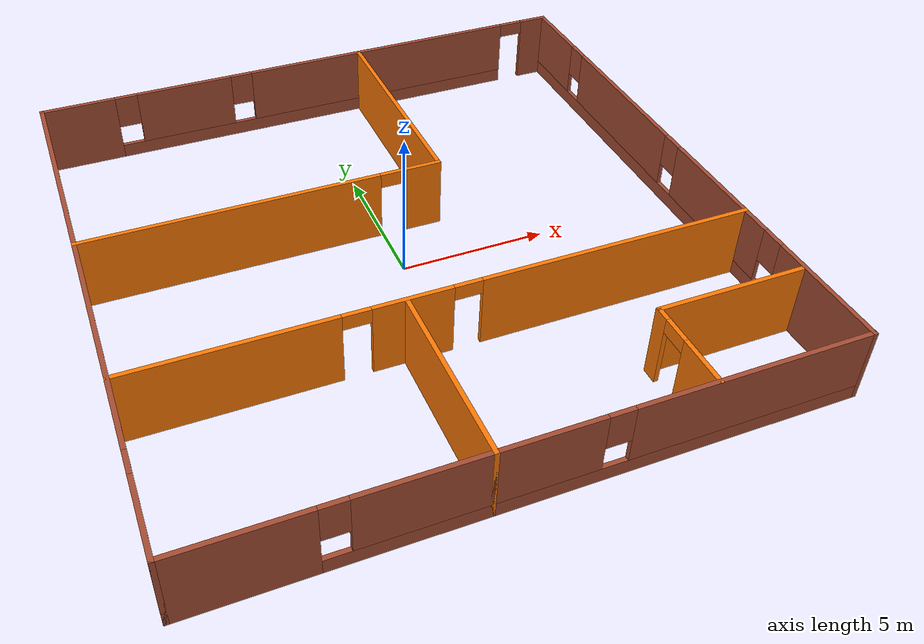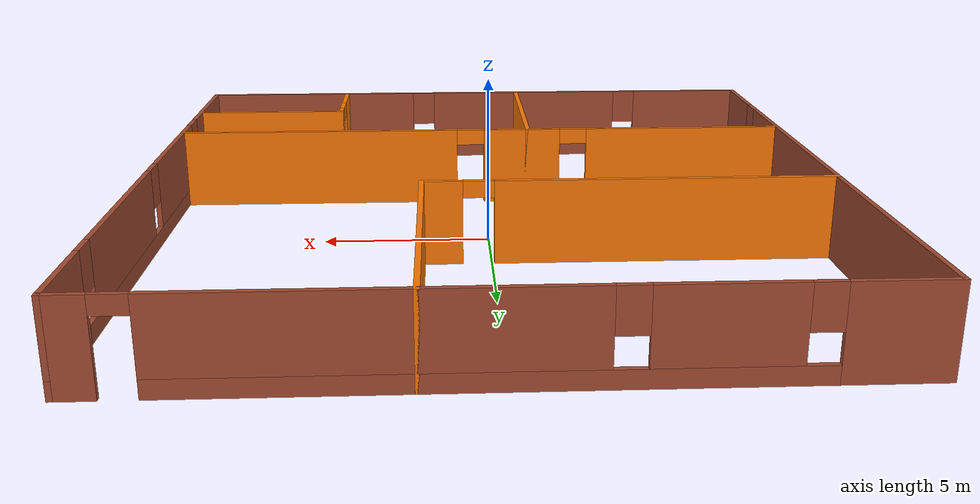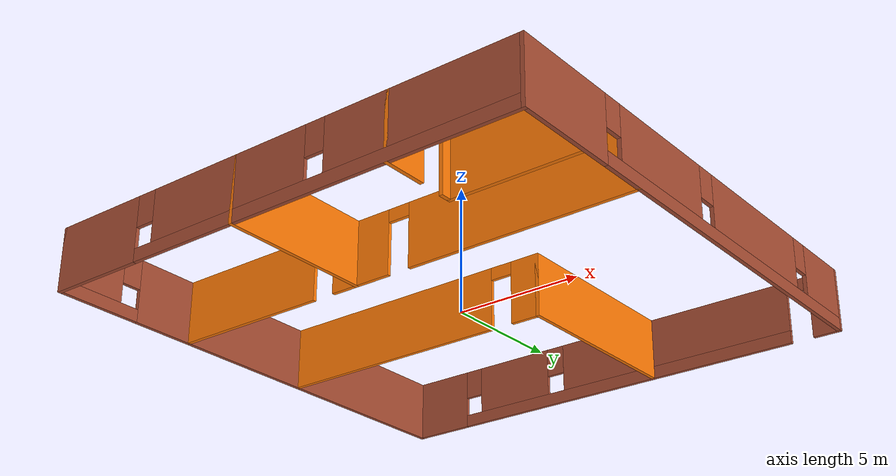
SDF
<?xml version='1.0'?>
<sdf version='1.6'>
  <model name='Building'>
    <pose frame=''>0 0 0 0 -0 0</pose>
    <link name='Wall_0'>
      <pose frame=''>0 10 0 0 -0 0</pose>
      <visual name='Wall_0_Visual_0'>
        <pose frame=''>-8.74573 0 1.25 0 -0 0</pose>
        <geometry>
          <box>
            <size>2.65853 0.15 2.5</size>
          </box>
        </geometry>
        <material>
          <script>
            <uri>file://media/materials/scripts/gazebo.material</uri>
            <name>Gazebo/Bricks</name>
          </script>
          <ambient>1 1 1 1</ambient>
        </material>
        <meta>
          <layer>0</layer>
        </meta>
      </visual>
      <collision name='Wall_0_Collision_0'>
        <geometry>
          <box>
            <size>2.65853 0.15 2.5</size>
          </box>
        </geometry>
        <pose frame=''>-8.74573 0 1.25 0 -0 0</pose>
      </collision>
      <visual name='Wall_0_Visual_1'>
        <pose frame=''>9.52682 0 1.25 0 -0 0</pose>
        <geometry>
          <box>
            <size>1.09635 0.15 2.5</size>
          </box>
        </geometry>
        <material>
          <script>
            <uri>file://media/materials/scripts/gazebo.material</uri>
            <name>Gazebo/Bricks</name>
          </script>
          <ambient>1 1 1 1</ambient>
        </material>
        <meta>
          <layer>0</layer>
        </meta>
      </visual>
      <collision name='Wall_0_Collision_1'>
        <geometry>
          <box>
            <size>1.09635 0.15 2.5</size>
          </box>
        </geometry>
        <pose frame=''>9.52682 0 1.25 0 -0 0</pose>
      </collision>
      <visual name='Wall_0_Visual_2'>
        <pose frame=''>0.331089 0 0.25 0 -0 0</pose>
        <geometry>
          <box>
            <size>15.4951 0.15 0.5</size>
          </box>
        </geometry>
        <material>
          <script>
            <uri>file://media/materials/scripts/gazebo.material</uri>
            <name>Gazebo/Bricks</name>
          </script>
          <ambient>1 1 1 1</ambient>
        </material>
        <meta>
          <layer>0</layer>
        </meta>
      </visual>
      <collision name='Wall_0_Collision_2'>
        <geometry>
          <box>
            <size>15.4951 0.15 0.5</size>
          </box>
        </geometry>
        <pose frame=''>0.331089 0 0.25 0 -0 0</pose>
      </collision>
      <visual name='Wall_0_Visual_3'>
        <pose frame=''>-4.85741 0 1.5 0 -0 0</pose>
        <geometry>
          <box>
            <size>3.51812 0.15 2</size>
          </box>
        </geometry>
        <material>
          <script>
            <uri>file://media/materials/scripts/gazebo.material</uri>
            <name>Gazebo/Bricks</name>
          </script>
          <ambient>1 1 1 1</ambient>
        </material>
        <meta>
          <layer>0</layer>
        </meta>
      </visual>
      <collision name='Wall_0_Collision_3'>
        <geometry>
          <box>
            <size>3.51812 0.15 2</size>
          </box>
        </geometry>
        <pose frame=''>-4.85741 0 1.5 0 -0 0</pose>
      </collision>
      <visual name='Wall_0_Visual_4'>
        <pose frame=''>2.89015 0 1.5 0 -0 0</pose>
        <geometry>
          <box>
            <size>10.377 0.15 2</size>
          </box>
        </geometry>
        <material>
          <script>
            <uri>file://media/materials/scripts/gazebo.material</uri>
            <name>Gazebo/Bricks</name>
          </script>
          <ambient>1 1 1 1</ambient>
        </material>
        <meta>
          <layer>0</layer>
        </meta>
      </visual>
      <collision name='Wall_0_Collision_4'>
        <geometry>
          <box>
            <size>10.377 0.15 2</size>
          </box>
        </geometry>
        <pose frame=''>2.89015 0 1.5 0 -0 0</pose>
      </collision>
      <visual name='Wall_0_Visual_5'>
        <pose frame=''>-7.01647 0 1.9 0 -0 0</pose>
        <geometry>
          <box>
            <size>0.8 0.15 1.2</size>
          </box>
        </geometry>
        <material>
          <script>
            <uri>file://media/materials/scripts/gazebo.material</uri>
            <name>Gazebo/Bricks</name>
          </script>
          <ambient>1 1 1 1</ambient>
        </material>
        <meta>
          <layer>0</layer>
        </meta>
      </visual>
      <collision name='Wall_0_Collision_5'>
        <geometry>
          <box>
            <size>0.8 0.15 1.2</size>
          </box>
        </geometry>
        <pose frame=''>-7.01647 0 1.9 0 -0 0</pose>
      </collision>
      <visual name='Wall_0_Visual_6'>
        <pose frame=''>-2.69835 0 1.9 0 -0 0</pose>
        <geometry>
          <box>
            <size>0.8 0.15 1.2</size>
          </box>
        </geometry>
        <material>
          <script>
            <uri>file://media/materials/scripts/gazebo.material</uri>
            <name>Gazebo/Bricks</name>
          </script>
          <ambient>1 1 1 1</ambient>
        </material>
        <meta>
          <layer>0</layer>
        </meta>
      </visual>
      <collision name='Wall_0_Collision_6'>
        <geometry>
          <box>
            <size>0.8 0.15 1.2</size>
          </box>
        </geometry>
        <pose frame=''>-2.69835 0 1.9 0 -0 0</pose>
      </collision>
      <visual name='Wall_0_Visual_7'>
        <pose frame=''>8.52865 0 2.25 0 -0 0</pose>
        <geometry>
          <box>
            <size>0.9 0.15 0.5</size>
          </box>
        </geometry>
        <material>
          <script>
            <uri>file://media/materials/scripts/gazebo.material</uri>
            <name>Gazebo/Bricks</name>
          </script>
          <ambient>1 1 1 1</ambient>
        </material>
        <meta>
          <layer>0</layer>
        </meta>
      </visual>
      <collision name='Wall_0_Collision_7'>
        <geometry>
          <box>
            <size>0.9 0.15 0.5</size>
          </box>
        </geometry>
        <pose frame=''>8.52865 0 2.25 0 -0 0</pose>
      </collision>
    </link>
    <link name='Wall_10'>
      <collision name='Wall_10_Collision'>
        <geometry>
          <box>
            <size>8.15 0.15 2.5</size>
          </box>
        </geometry>
        <pose frame=''>0 0 1.25 0 -0 0</pose>
      </collision>
      <visual name='Wall_10_Visual'>
        <pose frame=''>0 0 1.25 0 -0 0</pose>
        <geometry>
          <box>
            <size>8.15 0.15 2.5</size>
          </box>
        </geometry>
        <material>
          <script>
            <uri>file://media/materials/scripts/gazebo.material</uri>
            <name>Gazebo/Grey</name>
          </script>
          <ambient>0.996078 0.47451 0.0196078 1</ambient>
        </material>
        <meta>
          <layer>0</layer>
        </meta>
      </visual>
      <pose frame=''>2 6 0 0 -0 1.5708</pose>
    </link>
    <link name='Wall_12'>
      <pose frame=''>0 -4 0 0 -0 0</pose>
      <visual name='Wall_12_Visual_0'>
        <pose frame=''>-6.77572 0 1.25 0 -0 0</pose>
        <geometry>
          <box>
            <size>6.59856 0.15 2.5</size>
          </box>
        </geometry>
        <material>
          <script>
            <uri>file://media/materials/scripts/gazebo.material</uri>
            <name>Gazebo/Grey</name>
          </script>
          <ambient>0.996078 0.47451 0.0196078 1</ambient>
        </material>
        <meta>
          <layer>0</layer>
        </meta>
      </visual>
      <collision name='Wall_12_Collision_0'>
        <geometry>
          <box>
            <size>6.59856 0.15 2.5</size>
          </box>
        </geometry>
        <pose frame=''>-6.77572 0 1.25 0 -0 0</pose>
      </collision>
      <visual name='Wall_12_Visual_1'>
        <pose frame=''>-1.29743 0 1.25 0 -0 0</pose>
        <geometry>
          <box>
            <size>2.55803 0.15 2.5</size>
          </box>
        </geometry>
        <material>
          <script>
            <uri>file://media/materials/scripts/gazebo.material</uri>
            <name>Gazebo/Grey</name>
          </script>
          <ambient>0.996078 0.47451 0.0196078 1</ambient>
        </material>
        <meta>
          <layer>0</layer>
        </meta>
      </visual>
      <collision name='Wall_12_Collision_1'>
        <geometry>
          <box>
            <size>2.55803 0.15 2.5</size>
          </box>
        </geometry>
        <pose frame=''>-1.29743 0 1.25 0 -0 0</pose>
      </collision>
      <visual name='Wall_12_Visual_2'>
        <pose frame=''>5.47829 0 1.25 0 -0 0</pose>
        <geometry>
          <box>
            <size>9.19341 0.15 2.5</size>
          </box>
        </geometry>
        <material>
          <script>
            <uri>file://media/materials/scripts/gazebo.material</uri>
            <name>Gazebo/Grey</name>
          </script>
          <ambient>0.996078 0.47451 0.0196078 1</ambient>
        </material>
        <meta>
          <layer>0</layer>
        </meta>
      </visual>
      <collision name='Wall_12_Collision_2'>
        <geometry>
          <box>
            <size>9.19341 0.15 2.5</size>
          </box>
        </geometry>
        <pose frame=''>5.47829 0 1.25 0 -0 0</pose>
      </collision>
      <visual name='Wall_12_Visual_3'>
        <pose frame=''>-3.02644 0 2.25 0 -0 0</pose>
        <geometry>
          <box>
            <size>0.9 0.15 0.5</size>
          </box>
        </geometry>
        <material>
          <script>
            <uri>file://media/materials/scripts/gazebo.material</uri>
            <name>Gazebo/Grey</name>
          </script>
          <ambient>0.996078 0.47451 0.0196078 1</ambient>
        </material>
        <meta>
          <layer>0</layer>
        </meta>
      </visual>
      <collision name='Wall_12_Collision_3'>
        <geometry>
          <box>
            <size>0.9 0.15 0.5</size>
          </box>
        </geometry>
        <pose frame=''>-3.02644 0 2.25 0 -0 0</pose>
      </collision>
      <visual name='Wall_12_Visual_4'>
        <pose frame=''>0.431586 0 2.25 0 -0 0</pose>
        <geometry>
          <box>
            <size>0.9 0.15 0.5</size>
          </box>
        </geometry>
        <material>
          <script>
            <uri>file://media/materials/scripts/gazebo.material</uri>
            <name>Gazebo/Grey</name>
          </script>
          <ambient>0.996078 0.47451 0.0196078 1</ambient>
        </material>
        <meta>
          <layer>0</layer>
        </meta>
      </visual>
      <collision name='Wall_12_Collision_4'>
        <geometry>
          <box>
            <size>0.9 0.15 0.5</size>
          </box>
        </geometry>
        <pose frame=''>0.431586 0 2.25 0 -0 0</pose>
      </collision>
    </link>
    <link name='Wall_14'>
      <collision name='Wall_14_Collision'>
        <geometry>
          <box>
            <size>6.15 0.15 2.5</size>
          </box>
        </geometry>
        <pose frame=''>0 0 1.25 0 -0 0</pose>
      </collision>
      <visual name='Wall_14_Visual'>
        <pose frame=''>0 0 1.25 0 -0 0</pose>
        <geometry>
          <box>
            <size>6.15 0.15 2.5</size>
          </box>
        </geometry>
        <material>
          <script>
            <uri>file://media/materials/scripts/gazebo.material</uri>
            <name>Gazebo/Grey</name>
          </script>
          <ambient>0.996078 0.47451 0.0196078 1</ambient>
        </material>
        <meta>
          <layer>0</layer>
        </meta>
      </visual>
      <pose frame=''>-1.5 -7 0 0 0 -1.5708</pose>
    </link>
    <link name='Wall_16'>
      <pose frame=''>5 -8.5 0 0 -0 1.5708</pose>
      <visual name='Wall_16_Visual_0'>
        <pose frame=''>-0.715498 0 1.25 0 -0 0</pose>
        <geometry>
          <box>
            <size>1.719 0.15 2.5</size>
          </box>
        </geometry>
        <material>
          <script>
            <uri>file://media/materials/scripts/gazebo.material</uri>
            <name>Gazebo/Grey</name>
          </script>
          <ambient>0.996078 0.47451 0.0196078 1</ambient>
        </material>
        <meta>
          <layer>0</layer>
        </meta>
      </visual>
      <collision name='Wall_16_Collision_0'>
        <geometry>
          <box>
            <size>1.719 0.15 2.5</size>
          </box>
        </geometry>
        <pose frame=''>-0.715498 0 1.25 0 -0 0</pose>
      </collision>
      <visual name='Wall_16_Visual_1'>
        <pose frame=''>1.3095 0 1.25 0 -0 0</pose>
        <geometry>
          <box>
            <size>0.530996 0.15 2.5</size>
          </box>
        </geometry>
        <material>
          <script>
            <uri>file://media/materials/scripts/gazebo.material</uri>
            <name>Gazebo/Grey</name>
          </script>
          <ambient>0.996078 0.47451 0.0196078 1</ambient>
        </material>
        <meta>
          <layer>0</layer>
        </meta>
      </visual>
      <collision name='Wall_16_Collision_1'>
        <geometry>
          <box>
            <size>0.530996 0.15 2.5</size>
          </box>
        </geometry>
        <pose frame=''>1.3095 0 1.25 0 -0 0</pose>
      </collision>
      <visual name='Wall_16_Visual_2'>
        <pose frame=''>0.594004 0 2.25 0 -0 0</pose>
        <geometry>
          <box>
            <size>0.9 0.15 0.5</size>
          </box>
        </geometry>
        <material>
          <script>
            <uri>file://media/materials/scripts/gazebo.material</uri>
            <name>Gazebo/Grey</name>
          </script>
          <ambient>0.996078 0.47451 0.0196078 1</ambient>
        </material>
        <meta>
          <layer>0</layer>
        </meta>
      </visual>
      <collision name='Wall_16_Collision_2'>
        <geometry>
          <box>
            <size>0.9 0.15 0.5</size>
          </box>
        </geometry>
        <pose frame=''>0.594004 0 2.25 0 -0 0</pose>
      </collision>
    </link>
    <link name='Wall_18'>
      <collision name='Wall_18_Collision'>
        <geometry>
          <box>
            <size>5 0.15 2.5</size>
          </box>
        </geometry>
        <pose frame=''>0 0 1.25 0 -0 0</pose>
      </collision>
      <visual name='Wall_18_Visual'>
        <pose frame=''>0 0 1.25 0 -0 0</pose>
        <geometry>
          <box>
            <size>5 0.15 2.5</size>
          </box>
        </geometry>
        <material>
          <script>
            <uri>file://media/materials/scripts/gazebo.material</uri>
            <name>Gazebo/Grey</name>
          </script>
          <ambient>0.996078 0.47451 0.0196078 1</ambient>
        </material>
        <meta>
          <layer>0</layer>
        </meta>
      </visual>
      <pose frame=''>7.425 -7 0 0 -0 0</pose>
    </link>
    <link name='Wall_2'>
      <pose frame=''>-10 0 0 0 0 -1.5708</pose>
      <visual name='Wall_2_Visual_0'>
        <pose frame=''>-1.74058 0 1.25 0 -0 0</pose>
        <geometry>
          <box>
            <size>16.6688 0.15 2.5</size>
          </box>
        </geometry>
        <material>
          <script>
            <uri>file://media/materials/scripts/gazebo.material</uri>
            <name>Gazebo/Bricks</name>
          </script>
          <ambient>1 1 1 1</ambient>
        </material>
        <meta>
          <layer>0</layer>
        </meta>
      </visual>
      <collision name='Wall_2_Collision_0'>
        <geometry>
          <box>
            <size>16.6688 0.15 2.5</size>
          </box>
        </geometry>
        <pose frame=''>-1.74058 0 1.25 0 -0 0</pose>
      </collision>
      <visual name='Wall_2_Visual_1'>
        <pose frame=''>8.33442 0 0.25 0 -0 0</pose>
        <geometry>
          <box>
            <size>3.48116 0.15 0.5</size>
          </box>
        </geometry>
        <material>
          <script>
            <uri>file://media/materials/scripts/gazebo.material</uri>
            <name>Gazebo/Bricks</name>
          </script>
          <ambient>1 1 1 1</ambient>
        </material>
        <meta>
          <layer>0</layer>
        </meta>
      </visual>
      <collision name='Wall_2_Collision_1'>
        <geometry>
          <box>
            <size>3.48116 0.15 0.5</size>
          </box>
        </geometry>
        <pose frame=''>8.33442 0 0.25 0 -0 0</pose>
      </collision>
      <visual name='Wall_2_Visual_2'>
        <pose frame=''>8.73442 0 1.5 0 -0 0</pose>
        <geometry>
          <box>
            <size>2.68116 0.15 2</size>
          </box>
        </geometry>
        <material>
          <script>
            <uri>file://media/materials/scripts/gazebo.material</uri>
            <name>Gazebo/Bricks</name>
          </script>
          <ambient>1 1 1 1</ambient>
        </material>
        <meta>
          <layer>0</layer>
        </meta>
      </visual>
      <collision name='Wall_2_Collision_2'>
        <geometry>
          <box>
            <size>2.68116 0.15 2</size>
          </box>
        </geometry>
        <pose frame=''>8.73442 0 1.5 0 -0 0</pose>
      </collision>
      <visual name='Wall_2_Visual_3'>
        <pose frame=''>6.99384 0 1.9 0 -0 0</pose>
        <geometry>
          <box>
            <size>0.8 0.15 1.2</size>
          </box>
        </geometry>
        <material>
          <script>
            <uri>file://media/materials/scripts/gazebo.material</uri>
            <name>Gazebo/Bricks</name>
          </script>
          <ambient>1 1 1 1</ambient>
        </material>
        <meta>
          <layer>0</layer>
        </meta>
      </visual>
      <collision name='Wall_2_Collision_3'>
        <geometry>
          <box>
            <size>0.8 0.15 1.2</size>
          </box>
        </geometry>
        <pose frame=''>6.99384 0 1.9 0 -0 0</pose>
      </collision>
    </link>
    <link name='Wall_4'>
      <pose frame=''>0 -10 0 0 -0 0</pose>
      <visual name='Wall_4_Visual_0'>
        <pose frame=''>-8.09282 0 1.25 0 -0 0</pose>
        <geometry>
          <box>
            <size>3.96436 0.15 2.5</size>
          </box>
        </geometry>
        <material>
          <script>
            <uri>file://media/materials/scripts/gazebo.material</uri>
            <name>Gazebo/Bricks</name>
          </script>
          <ambient>1 1 1 1</ambient>
        </material>
        <meta>
          <layer>0</layer>
        </meta>
      </visual>
      <collision name='Wall_4_Collision_0'>
        <geometry>
          <box>
            <size>3.96436 0.15 2.5</size>
          </box>
        </geometry>
        <pose frame=''>-8.09282 0 1.25 0 -0 0</pose>
      </collision>
      <visual name='Wall_4_Visual_1'>
        <pose frame=''>1.98218 0 0.25 0 -0 0</pose>
        <geometry>
          <box>
            <size>16.1856 0.15 0.5</size>
          </box>
        </geometry>
        <material>
          <script>
            <uri>file://media/materials/scripts/gazebo.material</uri>
            <name>Gazebo/Bricks</name>
          </script>
          <ambient>1 1 1 1</ambient>
        </material>
        <meta>
          <layer>0</layer>
        </meta>
      </visual>
      <collision name='Wall_4_Collision_1'>
        <geometry>
          <box>
            <size>16.1856 0.15 0.5</size>
          </box>
        </geometry>
        <pose frame=''>1.98218 0 0.25 0 -0 0</pose>
      </collision>
      <visual name='Wall_4_Visual_2'>
        <pose frame=''>-1.82339 0 1.5 0 -0 0</pose>
        <geometry>
          <box>
            <size>6.97451 0.15 2</size>
          </box>
        </geometry>
        <material>
          <script>
            <uri>file://media/materials/scripts/gazebo.material</uri>
            <name>Gazebo/Bricks</name>
          </script>
          <ambient>1 1 1 1</ambient>
        </material>
        <meta>
          <layer>0</layer>
        </meta>
      </visual>
      <collision name='Wall_4_Collision_2'>
        <geometry>
          <box>
            <size>6.97451 0.15 2</size>
          </box>
        </geometry>
        <pose frame=''>-1.82339 0 1.5 0 -0 0</pose>
      </collision>
      <visual name='Wall_4_Visual_3'>
        <pose frame=''>6.26943 0 1.5 0 -0 0</pose>
        <geometry>
          <box>
            <size>7.61113 0.15 2</size>
          </box>
        </geometry>
        <material>
          <script>
            <uri>file://media/materials/scripts/gazebo.material</uri>
            <name>Gazebo/Bricks</name>
          </script>
          <ambient>1 1 1 1</ambient>
        </material>
        <meta>
          <layer>0</layer>
        </meta>
      </visual>
      <collision name='Wall_4_Collision_3'>
        <geometry>
          <box>
            <size>7.61113 0.15 2</size>
          </box>
        </geometry>
        <pose frame=''>6.26943 0 1.5 0 -0 0</pose>
      </collision>
      <visual name='Wall_4_Visual_4'>
        <pose frame=''>-5.71064 0 1.9 0 -0 0</pose>
        <geometry>
          <box>
            <size>0.8 0.15 1.2</size>
          </box>
        </geometry>
        <material>
          <script>
            <uri>file://media/materials/scripts/gazebo.material</uri>
            <name>Gazebo/Bricks</name>
          </script>
          <ambient>1 1 1 1</ambient>
        </material>
        <meta>
          <layer>0</layer>
        </meta>
      </visual>
      <collision name='Wall_4_Collision_4'>
        <geometry>
          <box>
            <size>0.8 0.15 1.2</size>
          </box>
        </geometry>
        <pose frame=''>-5.71064 0 1.9 0 -0 0</pose>
      </collision>
      <visual name='Wall_4_Visual_5'>
        <pose frame=''>2.06387 0 1.9 0 -0 0</pose>
        <geometry>
          <box>
            <size>0.8 0.15 1.2</size>
          </box>
        </geometry>
        <material>
          <script>
            <uri>file://media/materials/scripts/gazebo.material</uri>
            <name>Gazebo/Bricks</name>
          </script>
          <ambient>1 1 1 1</ambient>
        </material>
        <meta>
          <layer>0</layer>
        </meta>
      </visual>
      <collision name='Wall_4_Collision_5'>
        <geometry>
          <box>
            <size>0.8 0.15 1.2</size>
          </box>
        </geometry>
        <pose frame=''>2.06387 0 1.9 0 -0 0</pose>
      </collision>
    </link>
    <link name='Wall_6'>
      <pose frame=''>10 0 0 0 -0 1.5708</pose>
      <visual name='Wall_6_Visual_0'>
        <pose frame=''>-7.97808 0 1.25 0 -0 0</pose>
        <geometry>
          <box>
            <size>4.19385 0.15 2.5</size>
          </box>
        </geometry>
        <material>
          <script>
            <uri>file://media/materials/scripts/gazebo.material</uri>
            <name>Gazebo/Bricks</name>
          </script>
          <ambient>1 1 1 1</ambient>
        </material>
        <meta>
          <layer>0</layer>
        </meta>
      </visual>
      <collision name='Wall_6_Collision_0'>
        <geometry>
          <box>
            <size>4.19385 0.15 2.5</size>
          </box>
        </geometry>
        <pose frame=''>-7.97808 0 1.25 0 -0 0</pose>
      </collision>
      <visual name='Wall_6_Visual_1'>
        <pose frame=''>2.09692 0 0.25 0 -0 0</pose>
        <geometry>
          <box>
            <size>15.9562 0.15 0.5</size>
          </box>
        </geometry>
        <material>
          <script>
            <uri>file://media/materials/scripts/gazebo.material</uri>
            <name>Gazebo/Bricks</name>
          </script>
          <ambient>1 1 1 1</ambient>
        </material>
        <meta>
          <layer>0</layer>
        </meta>
      </visual>
      <collision name='Wall_6_Collision_1'>
        <geometry>
          <box>
            <size>15.9562 0.15 0.5</size>
          </box>
        </geometry>
        <pose frame=''>2.09692 0 0.25 0 -0 0</pose>
      </collision>
      <visual name='Wall_6_Visual_2'>
        <pose frame=''>-2.64967 0 1.5 0 -0 0</pose>
        <geometry>
          <box>
            <size>4.86297 0.15 2</size>
          </box>
        </geometry>
        <material>
          <script>
            <uri>file://media/materials/scripts/gazebo.material</uri>
            <name>Gazebo/Bricks</name>
          </script>
          <ambient>1 1 1 1</ambient>
        </material>
        <meta>
          <layer>0</layer>
        </meta>
      </visual>
      <collision name='Wall_6_Collision_2'>
        <geometry>
          <box>
            <size>4.86297 0.15 2</size>
          </box>
        </geometry>
        <pose frame=''>-2.64967 0 1.5 0 -0 0</pose>
      </collision>
      <visual name='Wall_6_Visual_3'>
        <pose frame=''>3.56268 0 1.5 0 -0 0</pose>
        <geometry>
          <box>
            <size>5.96171 0.15 2</size>
          </box>
        </geometry>
        <material>
          <script>
            <uri>file://media/materials/scripts/gazebo.material</uri>
            <name>Gazebo/Bricks</name>
          </script>
          <ambient>1 1 1 1</ambient>
        </material>
        <meta>
          <layer>0</layer>
        </meta>
      </visual>
      <collision name='Wall_6_Collision_3'>
        <geometry>
          <box>
            <size>5.96171 0.15 2</size>
          </box>
        </geometry>
        <pose frame=''>3.56268 0 1.5 0 -0 0</pose>
      </collision>
      <visual name='Wall_6_Visual_4'>
        <pose frame=''>8.70927 0 1.5 0 -0 0</pose>
        <geometry>
          <box>
            <size>2.73147 0.15 2</size>
          </box>
        </geometry>
        <material>
          <script>
            <uri>file://media/materials/scripts/gazebo.material</uri>
            <name>Gazebo/Bricks</name>
          </script>
          <ambient>1 1 1 1</ambient>
        </material>
        <meta>
          <layer>0</layer>
        </meta>
      </visual>
      <collision name='Wall_6_Collision_4'>
        <geometry>
          <box>
            <size>2.73147 0.15 2</size>
          </box>
        </geometry>
        <pose frame=''>8.70927 0 1.5 0 -0 0</pose>
      </collision>
      <visual name='Wall_6_Visual_5'>
        <pose frame=''>-5.48115 0 1.9 0 -0 0</pose>
        <geometry>
          <box>
            <size>0.8 0.15 1.2</size>
          </box>
        </geometry>
        <material>
          <script>
            <uri>file://media/materials/scripts/gazebo.material</uri>
            <name>Gazebo/Bricks</name>
          </script>
          <ambient>1 1 1 1</ambient>
        </material>
        <meta>
          <layer>0</layer>
        </meta>
      </visual>
      <collision name='Wall_6_Collision_5'>
        <geometry>
          <box>
            <size>0.8 0.15 1.2</size>
          </box>
        </geometry>
        <pose frame=''>-5.48115 0 1.9 0 -0 0</pose>
      </collision>
      <visual name='Wall_6_Visual_6'>
        <pose frame=''>0.18182 0 1.9 0 -0 0</pose>
        <geometry>
          <box>
            <size>0.8 0.15 1.2</size>
          </box>
        </geometry>
        <material>
          <script>
            <uri>file://media/materials/scripts/gazebo.material</uri>
            <name>Gazebo/Bricks</name>
          </script>
          <ambient>1 1 1 1</ambient>
        </material>
        <meta>
          <layer>0</layer>
        </meta>
      </visual>
      <collision name='Wall_6_Collision_6'>
        <geometry>
          <box>
            <size>0.8 0.15 1.2</size>
          </box>
        </geometry>
        <pose frame=''>0.18182 0 1.9 0 -0 0</pose>
      </collision>
      <visual name='Wall_6_Visual_7'>
        <pose frame=''>6.94353 0 1.9 0 -0 0</pose>
        <geometry>
          <box>
            <size>0.8 0.15 1.2</size>
          </box>
        </geometry>
        <material>
          <script>
            <uri>file://media/materials/scripts/gazebo.material</uri>
            <name>Gazebo/Bricks</name>
          </script>
          <ambient>1 1 1 1</ambient>
        </material>
        <meta>
          <layer>0</layer>
        </meta>
      </visual>
      <collision name='Wall_6_Collision_7'>
        <geometry>
          <box>
            <size>0.8 0.15 1.2</size>
          </box>
        </geometry>
        <pose frame=''>6.94353 0 1.9 0 -0 0</pose>
      </collision>
    </link>
    <link name='Wall_8'>
      <pose frame=''>-4 2 0 0 -0 0</pose>
      <visual name='Wall_8_Visual_0'>
        <pose frame=''>-1.07331 0 1.25 0 -0 0</pose>
        <geometry>
          <box>
            <size>10.0034 0.15 2.5</size>
          </box>
        </geometry>
        <material>
          <script>
            <uri>file://media/materials/scripts/gazebo.material</uri>
            <name>Gazebo/Grey</name>
          </script>
          <ambient>0.996078 0.47451 0.0196078 1</ambient>
        </material>
        <meta>
          <layer>0</layer>
        </meta>
      </visual>
      <collision name='Wall_8_Collision_0'>
        <geometry>
          <box>
            <size>10.0034 0.15 2.5</size>
          </box>
        </geometry>
        <pose frame=''>-1.07331 0 1.25 0 -0 0</pose>
      </collision>
      <visual name='Wall_8_Visual_1'>
        <pose frame=''>5.45169 0 1.25 0 -0 0</pose>
        <geometry>
          <box>
            <size>1.24661 0.15 2.5</size>
          </box>
        </geometry>
        <material>
          <script>
            <uri>file://media/materials/scripts/gazebo.material</uri>
            <name>Gazebo/Grey</name>
          </script>
          <ambient>0.996078 0.47451 0.0196078 1</ambient>
        </material>
        <meta>
          <layer>0</layer>
        </meta>
      </visual>
      <collision name='Wall_8_Collision_1'>
        <geometry>
          <box>
            <size>1.24661 0.15 2.5</size>
          </box>
        </geometry>
        <pose frame=''>5.45169 0 1.25 0 -0 0</pose>
      </collision>
      <visual name='Wall_8_Visual_2'>
        <pose frame=''>4.37839 0 2.25 0 -0 0</pose>
        <geometry>
          <box>
            <size>0.9 0.15 0.5</size>
          </box>
        </geometry>
        <material>
          <script>
            <uri>file://media/materials/scripts/gazebo.material</uri>
            <name>Gazebo/Grey</name>
          </script>
          <ambient>0.996078 0.47451 0.0196078 1</ambient>
        </material>
        <meta>
          <layer>0</layer>
        </meta>
      </visual>
      <collision name='Wall_8_Collision_2'>
        <geometry>
          <box>
            <size>0.9 0.15 0.5</size>
          </box>
        </geometry>
        <pose frame=''>4.37839 0 2.25 0 -0 0</pose>
      </collision>
    </link>
    <static>1</static>
  </model>
</sdf>
